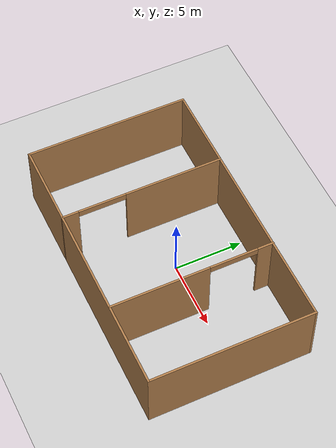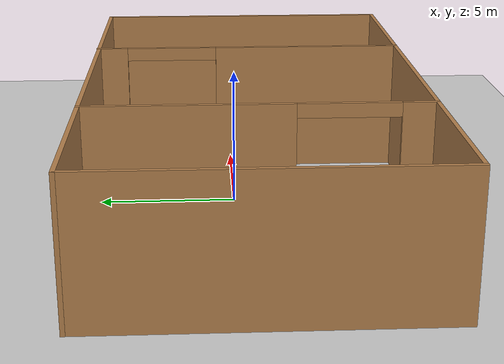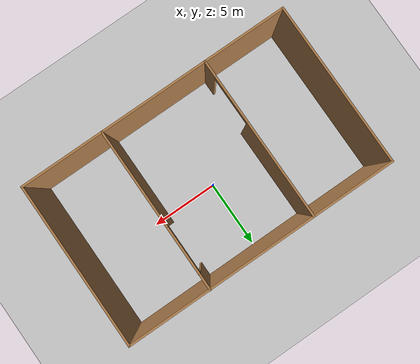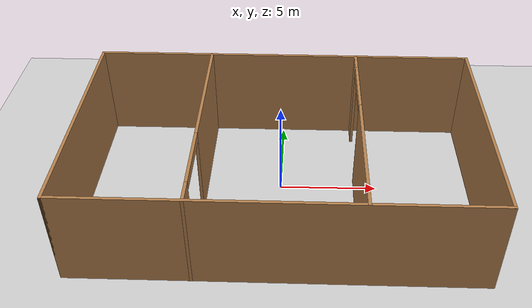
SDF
<sdf version="1.6">
 <world name="default">
  <light name="sun" type="directional">
   <pose>0 0 10 0 -0 0</pose>
   <diffuse>0.8 0.8 0.8 1</diffuse>
   <specular>0.2 0.2 0.2 1</specular>
   <attenuation>
    <range>1000</range>
    <constant>0.9</constant>
    <linear>0.01</linear>
    <quadratic>0.001</quadratic>
   </attenuation>
   <direction>-0.5 0.1 -0.9</direction>
  </light>
  <model name="ground_plane">
   <static>1</static>
   <link name="link">
    <collision name="collision">
     <geometry><plane><normal>0 0 1</normal><size>100 100</size></plane></geometry>
     <surface><friction><ode><mu>100</mu><mu2>50</mu2></ode></friction></surface>
    </collision>
    <visual name="visual">
     <cast_shadows>0</cast_shadows>
     <geometry><plane><normal>0 0 1</normal><size>100 100</size></plane></geometry>
     <material>
      <script><uri>file://media/materials/scripts/gazebo.material</uri><name>Gazebo/Grey</name></script>
     </material>
    </visual>
   </link>
  </model>
  <gravity>0 0 -9.8</gravity>
  <magnetic_field>6e-06 2.3e-05 -4.2e-05</magnetic_field>
  <atmosphere type="adiabatic"/>
  <physics name="default_physics" default="0" type="ode">
   <max_step_size>0.001</max_step_size>
   <real_time_factor>1</real_time_factor>
   <real_time_update_rate>1000</real_time_update_rate>
  </physics>
  <scene><ambient>0.4 0.4 0.4 1</ambient><background>0.7 0.7 0.7 1</background><shadows>1</shadows></scene>
  <spherical_coordinates>
   <surface_model>EARTH_WGS84</surface_model>
   <latitude_deg>0</latitude_deg>
   <longitude_deg>0</longitude_deg>
   <elevation>0</elevation>
   <heading_deg>0</heading_deg>
  </spherical_coordinates>
  <model name="3rooms">
   <pose>-0.019 -0.6905 0 0 -0 0</pose>
   <link name="Wall_12">
    <pose>-3.925 -0.0115 0 0 0 -1.5708</pose>
    <visual name="Wall_12_Visual_0">
     <pose>-2.37496 0 2.5 0 -0 0</pose>
     <geometry><box><size>7.25007 0.15 5</size></box></geometry>
     <material>
      <script><uri>file://media/materials/scripts/gazebo.material</uri><name>Gazebo/Wood</name></script>
      <ambient>1 1 1 1</ambient>
     </material>
     <meta><layer>0</layer></meta>
    </visual>
    <collision name="Wall_12_Collision_0">
     <geometry><box><size>7.25007 0.15 5</size></box></geometry>
     <pose>-2.37496 0 2.5 0 -0 0</pose>
    </collision>
    <visual name="Wall_12_Visual_1">
     <pose>5.37504 0 2.5 0 -0 0</pose>
     <geometry><box><size>1.24993 0.15 5</size></box></geometry>
     <material>
      <script><uri>file://media/materials/scripts/gazebo.material</uri><name>Gazebo/Wood</name></script>
      <ambient>1 1 1 1</ambient>
     </material>
     <meta><layer>0</layer></meta>
    </visual>
    <collision name="Wall_12_Collision_1">
     <geometry><box><size>1.24993 0.15 5</size></box></geometry>
     <pose>5.37504 0 2.5 0 -0 0</pose>
    </collision>
    <visual name="Wall_12_Visual_2">
     <pose>3.00007 0 4.75 0 -0 0</pose>
     <geometry><box><size>3.5 0.15 0.5</size></box></geometry>
     <material>
      <script><uri>file://media/materials/scripts/gazebo.material</uri><name>Gazebo/Wood</name></script>
      <ambient>1 1 1 1</ambient>
     </material>
     <meta><layer>0</layer></meta>
    </visual>
    <collision name="Wall_12_Collision_2">
     <geometry><box><size>3.5 0.15 0.5</size></box></geometry>
     <pose>3.00007 0 4.75 0 -0 0</pose>
    </collision>
   </link>
   <link name="Wall_14">
    <pose>3.925 0.0115 0 0 0 -1.5708</pose>
    <visual name="Wall_14_Visual_0">
     <pose>-5.38489 0 2.5 0 -0 0</pose>
     <geometry><box><size>1.23022 0.15 5</size></box></geometry>
     <material>
      <script><uri>file://media/materials/scripts/gazebo.material</uri><name>Gazebo/Wood</name></script>
      <ambient>1 1 1 1</ambient>
     </material>
     <meta><layer>0</layer></meta>
    </visual>
    <collision name="Wall_14_Collision_0">
     <geometry><box><size>1.23022 0.15 5</size></box></geometry>
     <pose>-5.38489 0 2.5 0 -0 0</pose>
    </collision>
    <visual name="Wall_14_Visual_1">
     <pose>2.36511 0 2.5 0 -0 0</pose>
     <geometry><box><size>7.26978 0.15 5</size></box></geometry>
     <material>
      <script><uri>file://media/materials/scripts/gazebo.material</uri><name>Gazebo/Wood</name></script>
      <ambient>1 1 1 1</ambient>
     </material>
     <meta><layer>0</layer></meta>
    </visual>
    <collision name="Wall_14_Collision_1">
     <geometry><box><size>7.26978 0.15 5</size></box></geometry>
     <pose>2.36511 0 2.5 0 -0 0</pose>
    </collision>
    <visual name="Wall_14_Visual_2">
     <pose>-3.01978 0 4.75 0 -0 0</pose>
     <geometry><box><size>3.5 0.15 0.5</size></box></geometry>
     <material>
      <script><uri>file://media/materials/scripts/gazebo.material</uri><name>Gazebo/Wood</name></script>
      <ambient>1 1 1 1</ambient>
     </material>
     <meta><layer>0</layer></meta>
    </visual>
    <collision name="Wall_14_Collision_2">
     <geometry><box><size>3.5 0.15 0.5</size></box></geometry>
     <pose>-3.01978 0 4.75 0 -0 0</pose>
    </collision>
   </link>
   <link name="Wall_3">
    <collision name="Wall_3_Collision">
     <geometry><box><size>12 0.15 5</size></box></geometry>
     <pose>0 0 2.5 0 -0 0</pose>
    </collision>
    <visual name="Wall_3_Visual">
     <pose>0 0 2.5 0 -0 0</pose>
     <geometry><box><size>12 0.15 5</size></box></geometry>
     <material>
      <script><uri>file://media/materials/scripts/gazebo.material</uri><name>Gazebo/Wood</name></script>
      <ambient>1 1 1 1</ambient>
     </material>
     <meta><layer>0</layer></meta>
    </visual>
    <pose>-9.925 -0.0115 0 0 0 -1.5708</pose>
   </link>
   <link name="Wall_5">
    <collision name="Wall_5_Collision">
     <geometry><box><size>20 0.15 5</size></box></geometry>
     <pose>0 0 2.5 0 -0 0</pose>
    </collision>
    <visual name="Wall_5_Visual">
     <pose>0 0 2.5 0 -0 0</pose>
     <geometry><box><size>20 0.15 5</size></box></geometry>
     <material>
      <script><uri>file://media/materials/scripts/gazebo.material</uri><name>Gazebo/Wood</name></script>
      <ambient>1 1 1 1</ambient>
     </material>
     <meta><layer>0</layer></meta>
    </visual>
    <pose>0 -5.9365 0 0 -0 0</pose>
   </link>
   <link name="Wall_6">
    <collision name="Wall_6_Collision">
     <geometry><box><size>12 0.15 5</size></box></geometry>
     <pose>0 0 2.5 0 -0 0</pose>
    </collision>
    <visual name="Wall_6_Visual">
     <pose>0 0 2.5 0 -0 0</pose>
     <geometry><box><size>12 0.15 5</size></box></geometry>
     <material>
      <script><uri>file://media/materials/scripts/gazebo.material</uri><name>Gazebo/Wood</name></script>
      <ambient>1 1 1 1</ambient>
     </material>
     <meta><layer>0</layer></meta>
    </visual>
    <pose>9.925 -0.0115 0 0 -0 1.5708</pose>
   </link>
   <link name="Wall_8">
    <collision name="Wall_8_Collision">
     <geometry><box><size>20 0.15 5</size></box></geometry>
     <pose>0 0 2.5 0 -0 0</pose>
    </collision>
    <visual name="Wall_8_Visual">
     <pose>0 0 2.5 0 -0 0</pose>
     <geometry><box><size>20 0.15 5</size></box></geometry>
     <material>
      <script><uri>file://media/materials/scripts/gazebo.material</uri><name>Gazebo/Wood</name></script>
      <ambient>1 1 1 1</ambient>
     </material>
     <meta><layer>0</layer></meta>
    </visual>
    <pose>0 5.9135 0 0 -0 0</pose>
   </link>
   <static>1</static>
  </model>
 </world>
</sdf>
